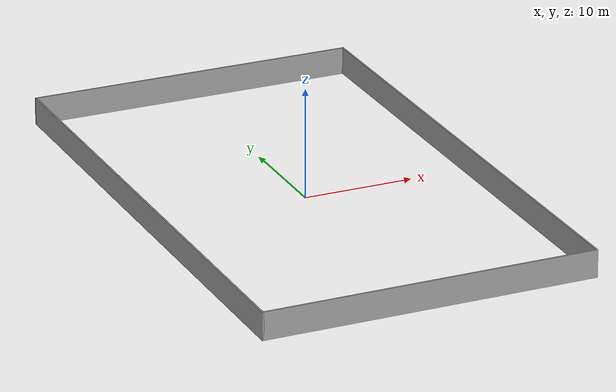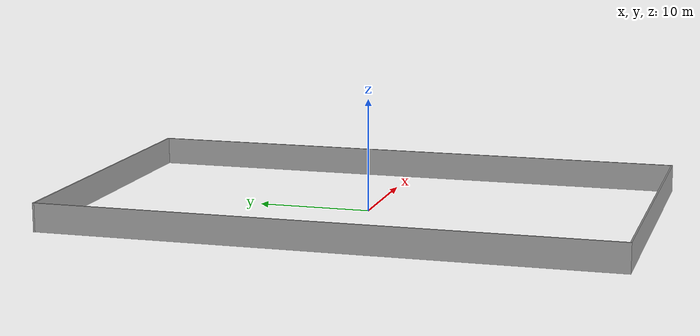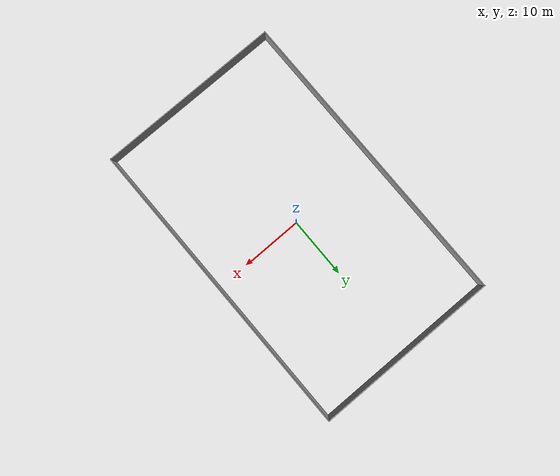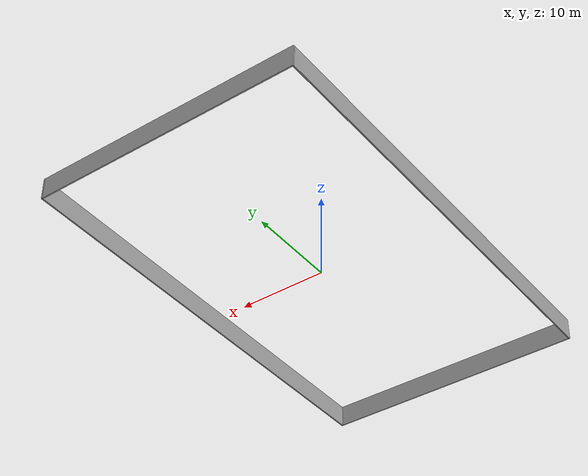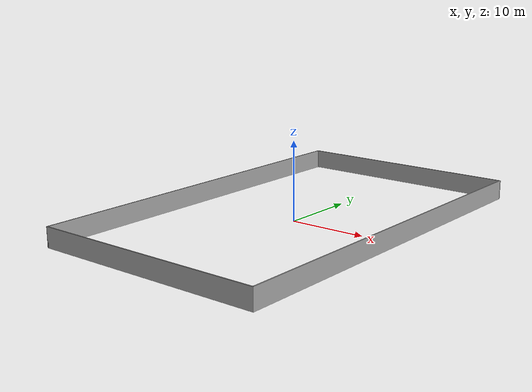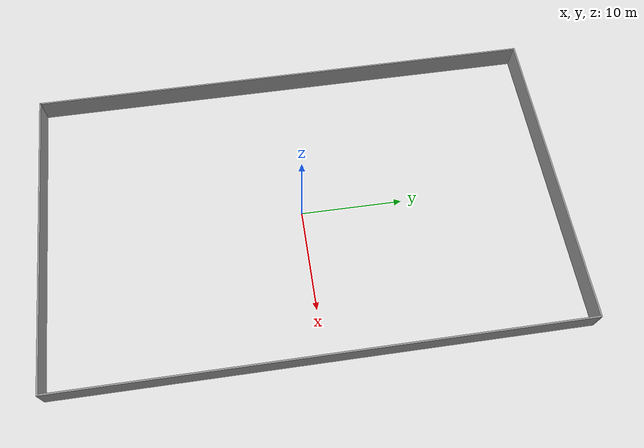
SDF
<?xml version='1.0'?>
<sdf version='1.6'>
  <model name='wall_30x50'>
    <pose frame=''>0 0 0 0 -0 0</pose>
    <link name='Wall_3'>
      <collision name='Wall_3_Collision'>
        <geometry>
          <box>
            <size>30.15 0.15 2.5</size>
          </box>
        </geometry>
        <pose frame=''>0 0 1.25 0 -0 0</pose>
      </collision>
      <visual name='Wall_3_Visual'>
        <pose frame=''>0 0 1.25 0 -0 0</pose>
        <geometry>
          <box>
            <size>30.15 0.15 2.5</size>
          </box>
        </geometry>
        <material>
          <script>
            <uri>file://media/materials/scripts/gazebo.material</uri>
            <name>Gazebo/Grey</name>
          </script>
          <ambient>1 1 1 1</ambient>
        </material>
        <meta>
          <layer>0</layer>
        </meta>
      </visual>
      <pose frame=''>0 25 0 0 -0 3.14159</pose>
    </link>
    <link name='Wall_4'>
      <collision name='Wall_4_Collision'>
        <geometry>
          <box>
            <size>50.15 0.15 2.5</size>
          </box>
        </geometry>
        <pose frame=''>0 0 1.25 0 -0 0</pose>
      </collision>
      <visual name='Wall_4_Visual'>
        <pose frame=''>0 0 1.25 0 -0 0</pose>
        <geometry>
          <box>
            <size>50.15 0.15 2.5</size>
          </box>
        </geometry>
        <material>
          <script>
            <uri>file://media/materials/scripts/gazebo.material</uri>
            <name>Gazebo/Grey</name>
          </script>
          <ambient>1 1 1 1</ambient>
        </material>
        <meta>
          <layer>0</layer>
        </meta>
      </visual>
      <pose frame=''>-15 0 0 0 -0 -1.5708</pose>
    </link>
    <link name='Wall_5'>
      <collision name='Wall_5_Collision'>
        <geometry>
          <box>
            <size>30.15 0.15 2.5</size>
          </box>
        </geometry>
        <pose frame=''>0 0 1.25 0 -0 0</pose>
      </collision>
      <visual name='Wall_5_Visual'>
        <pose frame=''>0 0 1.25 0 -0 0</pose>
        <geometry>
          <box>
            <size>30.15 0.15 2.5</size>
          </box>
        </geometry>
        <material>
          <script>
            <uri>file://media/materials/scripts/gazebo.material</uri>
            <name>Gazebo/Grey</name>
          </script>
          <ambient>1 1 1 1</ambient>
        </material>
        <meta>
          <layer>0</layer>
        </meta>
      </visual>
      <pose frame=''>0 -25 0 0 -0 0</pose>
    </link>
    <link name='Wall_6'>
      <collision name='Wall_6_Collision'>
        <geometry>
          <box>
            <size>50.15 0.15 2.5</size>
          </box>
        </geometry>
        <pose frame=''>0 0 1.25 0 -0 0</pose>
      </collision>
      <visual name='Wall_6_Visual'>
        <pose frame=''>0 0 1.25 0 -0 0</pose>
        <geometry>
          <box>
            <size>50.15 0.15 2.5</size>
          </box>
        </geometry>
        <material>
          <script>
            <uri>file://media/materials/scripts/gazebo.material</uri>
            <name>Gazebo/Grey</name>
          </script>
          <ambient>1 1 1 1</ambient>
        </material>
        <meta>
          <layer>0</layer>
        </meta>
      </visual>
      <pose frame=''>15 0 0 0 -0 1.5708</pose>
    </link>
    <static>1</static>
  </model>
</sdf>
